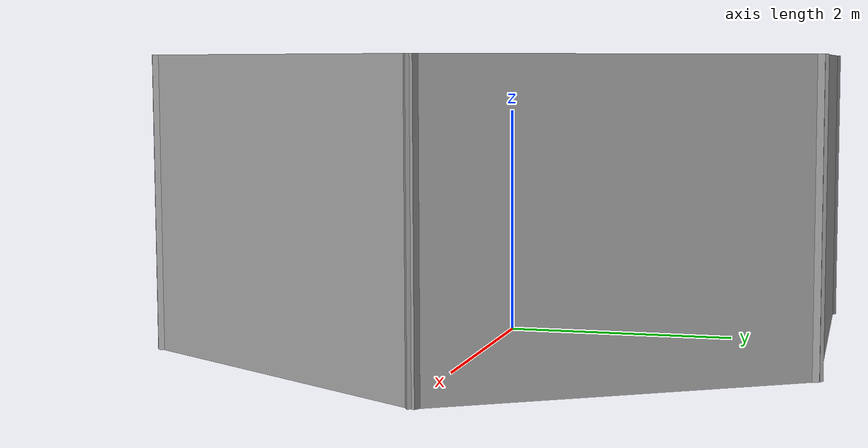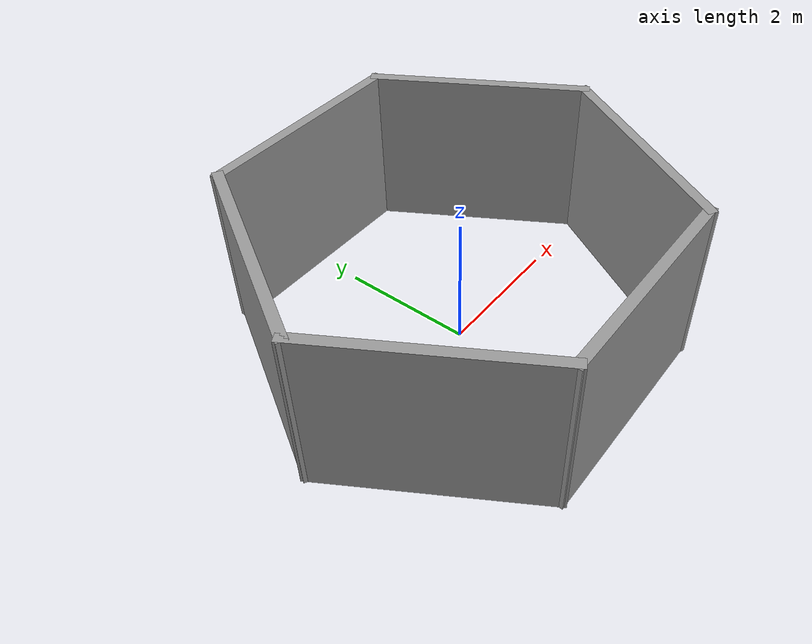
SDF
<?xml version='1.0'?>
<sdf version='1.7'>
  <model name='fishbot'>
    <pose>0.0545 0.074821 0 0 -0 0</pose>
    <link name='Wall_17'>
      <collision name='Wall_17_Collision'>
        <geometry>
          <box>
            <size>3.25 0.15 2.5</size>
          </box>
        </geometry>
        <pose>0 0 1.25 0 -0 0</pose>
      </collision>
      <visual name='Wall_17_Visual'>
        <pose>0 0 1.25 0 -0 0</pose>
        <geometry>
          <box>
            <size>3.25 0.15 2.5</size>
          </box>
        </geometry>
        <material>
          <script>
            <uri>file://media/materials/scripts/gazebo.material</uri>
            <name>Gazebo/Grey</name>
          </script>
          <ambient>1 1 1 1</ambient>
        </material>
        <meta>
          <layer>0</layer>
        </meta>
      </visual>
      <pose>0 2.68468 0 0 -0 0</pose>
    </link>
    <link name='Wall_18'>
      <collision name='Wall_18_Collision'>
        <geometry>
          <box>
            <size>3.25 0.15 2.5</size>
          </box>
        </geometry>
        <pose>0 0 1.25 0 -0 0</pose>
      </collision>
      <visual name='Wall_18_Visual'>
        <pose>0 0 1.25 0 -0 0</pose>
        <geometry>
          <box>
            <size>3.25 0.15 2.5</size>
          </box>
        </geometry>
        <material>
          <script>
            <uri>file://media/materials/scripts/gazebo.material</uri>
            <name>Gazebo/Grey</name>
          </script>
          <ambient>1 1 1 1</ambient>
        </material>
        <meta>
          <layer>0</layer>
        </meta>
      </visual>
      <pose>2.325 1.34234 0 0 -0 -1.0472</pose>
    </link>
    <link name='Wall_19'>
      <collision name='Wall_19_Collision'>
        <geometry>
          <box>
            <size>3.25 0.15 2.5</size>
          </box>
        </geometry>
        <pose>0 0 1.25 0 -0 0</pose>
      </collision>
      <visual name='Wall_19_Visual'>
        <pose>0 0 1.25 0 -0 0</pose>
        <geometry>
          <box>
            <size>3.25 0.15 2.5</size>
          </box>
        </geometry>
        <material>
          <script>
            <uri>file://media/materials/scripts/gazebo.material</uri>
            <name>Gazebo/Grey</name>
          </script>
          <ambient>1 1 1 1</ambient>
        </material>
        <meta>
          <layer>0</layer>
        </meta>
      </visual>
      <pose>2.325 -1.34234 0 0 -0 -2.0944</pose>
    </link>
    <link name='Wall_20'>
      <collision name='Wall_20_Collision'>
        <geometry>
          <box>
            <size>3.25 0.15 2.5</size>
          </box>
        </geometry>
        <pose>0 0 1.25 0 -0 0</pose>
      </collision>
      <visual name='Wall_20_Visual'>
        <pose>0 0 1.25 0 -0 0</pose>
        <geometry>
          <box>
            <size>3.25 0.15 2.5</size>
          </box>
        </geometry>
        <material>
          <script>
            <uri>file://media/materials/scripts/gazebo.material</uri>
            <name>Gazebo/Grey</name>
          </script>
          <ambient>1 1 1 1</ambient>
        </material>
        <meta>
          <layer>0</layer>
        </meta>
      </visual>
      <pose>0 -2.68468 0 0 -0 3.14159</pose>
    </link>
    <link name='Wall_21'>
      <collision name='Wall_21_Collision'>
        <geometry>
          <box>
            <size>3.25 0.15 2.5</size>
          </box>
        </geometry>
        <pose>0 0 1.25 0 -0 0</pose>
      </collision>
      <visual name='Wall_21_Visual'>
        <pose>0 0 1.25 0 -0 0</pose>
        <geometry>
          <box>
            <size>3.25 0.15 2.5</size>
          </box>
        </geometry>
        <material>
          <script>
            <uri>file://media/materials/scripts/gazebo.material</uri>
            <name>Gazebo/Grey</name>
          </script>
          <ambient>1 1 1 1</ambient>
        </material>
        <meta>
          <layer>0</layer>
        </meta>
      </visual>
      <pose>-2.325 -1.34234 0 0 -0 2.0944</pose>
    </link>
    <link name='Wall_22'>
      <collision name='Wall_22_Collision'>
        <geometry>
          <box>
            <size>3.25 0.15 2.5</size>
          </box>
        </geometry>
        <pose>0 0 1.25 0 -0 0</pose>
      </collision>
      <visual name='Wall_22_Visual'>
        <pose>0 0 1.25 0 -0 0</pose>
        <geometry>
          <box>
            <size>3.25 0.15 2.5</size>
          </box>
        </geometry>
        <material>
          <script>
            <uri>file://media/materials/scripts/gazebo.material</uri>
            <name>Gazebo/Grey</name>
          </script>
          <ambient>1 1 1 1</ambient>
        </material>
        <meta>
          <layer>0</layer>
        </meta>
      </visual>
      <pose>-2.325 1.34234 0 0 -0 1.0472</pose>
    </link>
    <static>1</static>
  </model>
</sdf>
